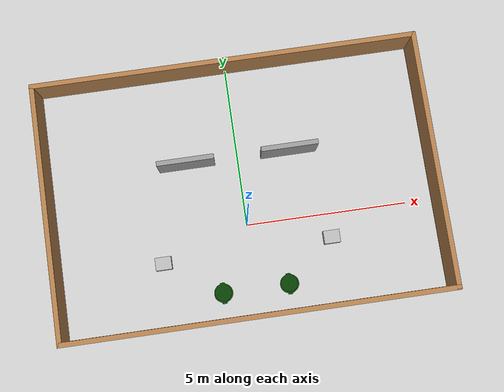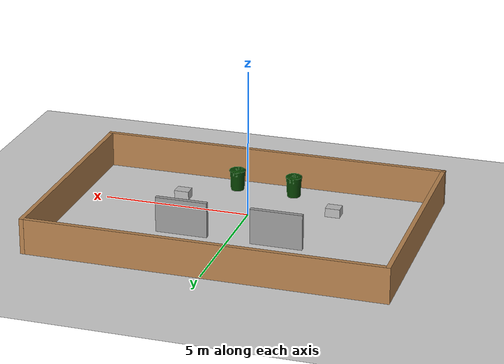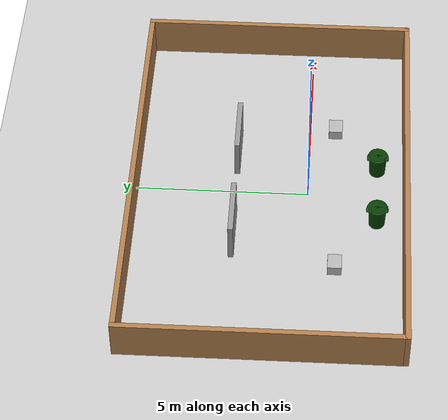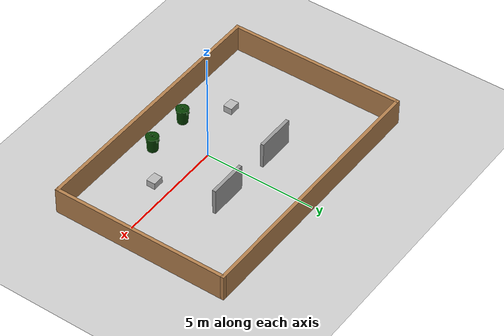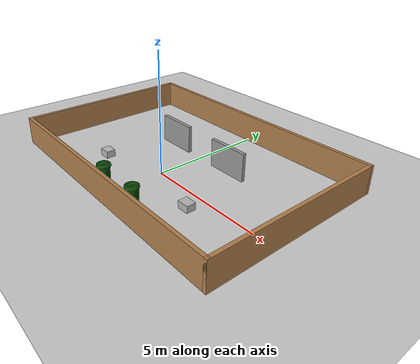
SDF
<sdf version="1.7">
 <world name="default">
  <light name="sun" type="directional">
   <pose>0 0 10 0 -0 0</pose>
   <diffuse>0.8 0.8 0.8 1</diffuse>
   <specular>0.2 0.2 0.2 1</specular>
   <attenuation>
    <range>1000</range>
    <constant>0.9</constant>
    <linear>0.01</linear>
    <quadratic>0.001</quadratic>
   </attenuation>
   <direction>-0.5 0.1 -0.9</direction>
   <spot><inner_angle>0</inner_angle><outer_angle>0</outer_angle><falloff>0</falloff></spot>
  </light>
  <model name="ground_plane">
   <static>1</static>
   <link name="link">
    <collision name="collision">
     <geometry><plane><normal>0 0 1</normal><size>100 100</size></plane></geometry>
     <surface><friction><ode><mu>100</mu><mu2>50</mu2></ode></friction></surface>
    </collision>
    <visual name="visual">
     <cast_shadows>0</cast_shadows>
     <geometry><plane><normal>0 0 1</normal><size>100 100</size></plane></geometry>
     <material>
      <script><uri>file://media/materials/scripts/gazebo.material</uri><name>Gazebo/Grey</name></script>
     </material>
    </visual>
   </link>
  </model>
  <gravity>0 0 -9.8</gravity>
  <magnetic_field>6e-06 2.3e-05 -4.2e-05</magnetic_field>
  <atmosphere type="adiabatic"/>
  <physics type="ode">
   <max_step_size>0.001</max_step_size>
   <real_time_factor>1</real_time_factor>
   <real_time_update_rate>1000</real_time_update_rate>
  </physics>
  <scene><ambient>0.4 0.4 0.4 1</ambient><background>0.7 0.7 0.7 1</background><shadows>1</shadows></scene>
  <spherical_coordinates>
   <surface_model>EARTH_WGS84</surface_model>
   <latitude_deg>0</latitude_deg>
   <longitude_deg>0</longitude_deg>
   <elevation>0</elevation>
   <heading_deg>0</heading_deg>
  </spherical_coordinates>
  <model name="outer_walls">
   <pose>-0.022916 1.0987 0 0 -0 0</pose>
   <link name="Wall_20">
    <collision name="Wall_20_Collision">
     <geometry><box><size>12 0.15 1.2</size></box></geometry>
     <pose>0 0 0.6 0 -0 0</pose>
    </collision>
    <visual name="Wall_20_Visual">
     <pose>0 0 0.6 0 -0 0</pose>
     <geometry><box><size>12 0.15 1.2</size></box></geometry>
     <material>
      <script><uri>file://media/materials/scripts/gazebo.material</uri><name>Gazebo/Wood</name></script>
      <ambient>1 1 1 1</ambient>
     </material>
     <meta><layer>0</layer></meta>
    </visual>
    <pose>0 -3.925 0 0 -0 0</pose>
   </link>
   <link name="Wall_22">
    <collision name="Wall_22_Collision">
     <geometry><box><size>8 0.15 1.2</size></box></geometry>
     <pose>0 0 0.6 0 -0 0</pose>
    </collision>
    <visual name="Wall_22_Visual">
     <pose>0 0 0.6 0 -0 0</pose>
     <geometry><box><size>8 0.15 1.2</size></box></geometry>
     <material>
      <script><uri>file://media/materials/scripts/gazebo.material</uri><name>Gazebo/Wood</name></script>
      <ambient>1 1 1 1</ambient>
     </material>
     <meta><layer>0</layer></meta>
    </visual>
    <pose>-5.925 -0 0 0 -0 1.5708</pose>
   </link>
   <link name="Wall_26">
    <collision name="Wall_26_Collision">
     <geometry><box><size>8 0.15 1.2</size></box></geometry>
     <pose>0 0 0.6 0 -0 0</pose>
    </collision>
    <visual name="Wall_26_Visual">
     <pose>0 0 0.6 0 -0 0</pose>
     <geometry><box><size>8 0.15 1.2</size></box></geometry>
     <material>
      <script><uri>file://media/materials/scripts/gazebo.material</uri><name>Gazebo/Wood</name></script>
      <ambient>1 1 1 1</ambient>
     </material>
     <meta><layer>0</layer></meta>
    </visual>
    <pose>5.925 -0 0 0 -0 1.5708</pose>
   </link>
   <link name="Wall_27">
    <collision name="Wall_27_Collision">
     <geometry><box><size>12 0.15 1.2</size></box></geometry>
     <pose>0 0 0.6 0 -0 0</pose>
    </collision>
    <visual name="Wall_27_Visual">
     <pose>0 0 0.6 0 -0 0</pose>
     <geometry><box><size>12 0.15 1.2</size></box></geometry>
     <material>
      <script><uri>file://media/materials/scripts/gazebo.material</uri><name>Gazebo/Wood</name></script>
      <ambient>1 1 1 1</ambient>
     </material>
     <meta><layer>0</layer></meta>
    </visual>
    <pose>0 3.925 0 0 -0 3.14159</pose>
   </link>
   <static>1</static>
  </model>
  <model name="cardboard_box_1">
   <pose>-2.71698 -0.830701 0.149 0 -0 0</pose>
   <link name="link">
    <inertial>
     <mass>2</mass>
     <inertia>
      <ixx>0.0416667</ixx>
      <ixy>0</ixy>
      <ixz>0</ixz>
      <iyy>0.0566667</iyy>
      <iyz>0</iyz>
      <izz>0.0683333</izz>
     </inertia>
    </inertial>
    <collision name="collision">
     <geometry><box><size>0.5 0.4 0.3</size></box></geometry>
     <surface>
      <friction><ode><mu>1</mu><mu2>1</mu2></ode></friction>
      <contact><ode><kp>1e+07</kp><kd>1</kd><min_depth>0.001</min_depth><max_vel>0.1</max_vel></ode></contact>
     </surface>
    </collision>
    <visual name="visual">
     <pose>0 0 -0.15 0 -0 0</pose>
     <geometry>
      <mesh><uri>model://cardboard_box/meshes/cardboard_box.dae</uri><scale>1.25932 1.00745 0.755591</scale></mesh>
     </geometry>
    </visual>
   </link>
  </model>
  <model name="cardboard_box_2">
   <pose>2.53059 -0.745881 0.149 0 -0 0</pose>
   <link name="link">
    <inertial>
     <mass>2</mass>
     <inertia>
      <ixx>0.0416667</ixx>
      <ixy>0</ixy>
      <ixz>0</ixz>
      <iyy>0.0566667</iyy>
      <iyz>0</iyz>
      <izz>0.0683333</izz>
     </inertia>
    </inertial>
    <collision name="collision">
     <geometry><box><size>0.5 0.4 0.3</size></box></geometry>
     <surface>
      <friction><ode><mu>1</mu><mu2>1</mu2></ode></friction>
      <contact><ode><kp>1e+07</kp><kd>1</kd><min_depth>0.001</min_depth><max_vel>0.1</max_vel></ode></contact>
     </surface>
    </collision>
    <visual name="visual">
     <pose>0 0 -0.15 0 -0 0</pose>
     <geometry>
      <mesh><uri>model://cardboard_box/meshes/cardboard_box.dae</uri><scale>1.25932 1.00745 0.755591</scale></mesh>
     </geometry>
    </visual>
   </link>
  </model>
  <model name="first_2015_trash_can">
   <link name="link">
    <inertial>
     <pose>0 0 0.3683 0 -0 0</pose>
     <mass>4.83076</mass>
     <inertia>
      <ixx>0.281534</ixx>
      <ixy>0</ixy>
      <ixz>0</ixz>
      <iyy>0.281534</iyy>
      <iyz>0</iyz>
      <izz>0.126223</izz>
     </inertia>
    </inertial>
    <visual name="visual">
     <geometry><mesh><uri>model://first_2015_trash_can/meshes/trash_can.dae</uri></mesh></geometry>
    </visual>
    <collision name="collision">
     <geometry><mesh><uri>model://first_2015_trash_can/meshes/trash_can.dae</uri></mesh></geometry>
    </collision>
   </link>
   <pose>1.00032 -2.00006 -3e-06 -2e-06 8e-06 -0.002106</pose>
  </model>
  <model name="first_2015_trash_can_0">
   <link name="link">
    <inertial>
     <pose>0 0 0.3683 0 -0 0</pose>
     <mass>4.83076</mass>
     <inertia>
      <ixx>0.281534</ixx>
      <ixy>0</ixy>
      <ixz>0</ixz>
      <iyy>0.281534</iyy>
      <iyz>0</iyz>
      <izz>0.126223</izz>
     </inertia>
    </inertial>
    <visual name="visual">
     <geometry><mesh><uri>model://first_2015_trash_can/meshes/trash_can.dae</uri></mesh></geometry>
    </visual>
    <collision name="collision">
     <geometry><mesh><uri>model://first_2015_trash_can/meshes/trash_can.dae</uri></mesh></geometry>
    </collision>
   </link>
   <pose>-0.999696 -2.00011 -1.1e-05 1e-06 5e-06 -0.001851</pose>
  </model>
  <model name="easy2">
   <pose>0 1.0875 0 0 -0 0</pose>
   <link name="Wall_12">
    <collision name="Wall_12_Collision">
     <geometry><box><size>1.75 0.15 1.2</size></box></geometry>
     <pose>0 0 0.6 0 -0 0</pose>
    </collision>
    <visual name="Wall_12_Visual">
     <pose>0 0 0.6 0 -0 0</pose>
     <geometry><box><size>1.75 0.15 1.2</size></box></geometry>
     <material>
      <script><uri>file://media/materials/scripts/gazebo.material</uri><name>Gazebo/Grey</name></script>
      <ambient>1 1 1 1</ambient>
     </material>
     <meta><layer>0</layer></meta>
    </visual>
    <pose>-1.6 1.0125 0 0 -0 3.14159</pose>
   </link>
   <link name="Wall_6">
    <collision name="Wall_6_Collision">
     <geometry><box><size>1.75 0.15 1.2</size></box></geometry>
     <pose>0 0 0.6 0 -0 0</pose>
    </collision>
    <visual name="Wall_6_Visual">
     <pose>0 0 0.6 0 -0 0</pose>
     <geometry><box><size>1.75 0.15 1.2</size></box></geometry>
     <material>
      <script><uri>file://media/materials/scripts/gazebo.material</uri><name>Gazebo/Grey</name></script>
      <ambient>1 1 1 1</ambient>
     </material>
     <meta><layer>0</layer></meta>
    </visual>
    <pose>1.6 1.0125 0 0 -0 0</pose>
   </link>
   <static>1</static>
  </model>
 </world>
</sdf>
